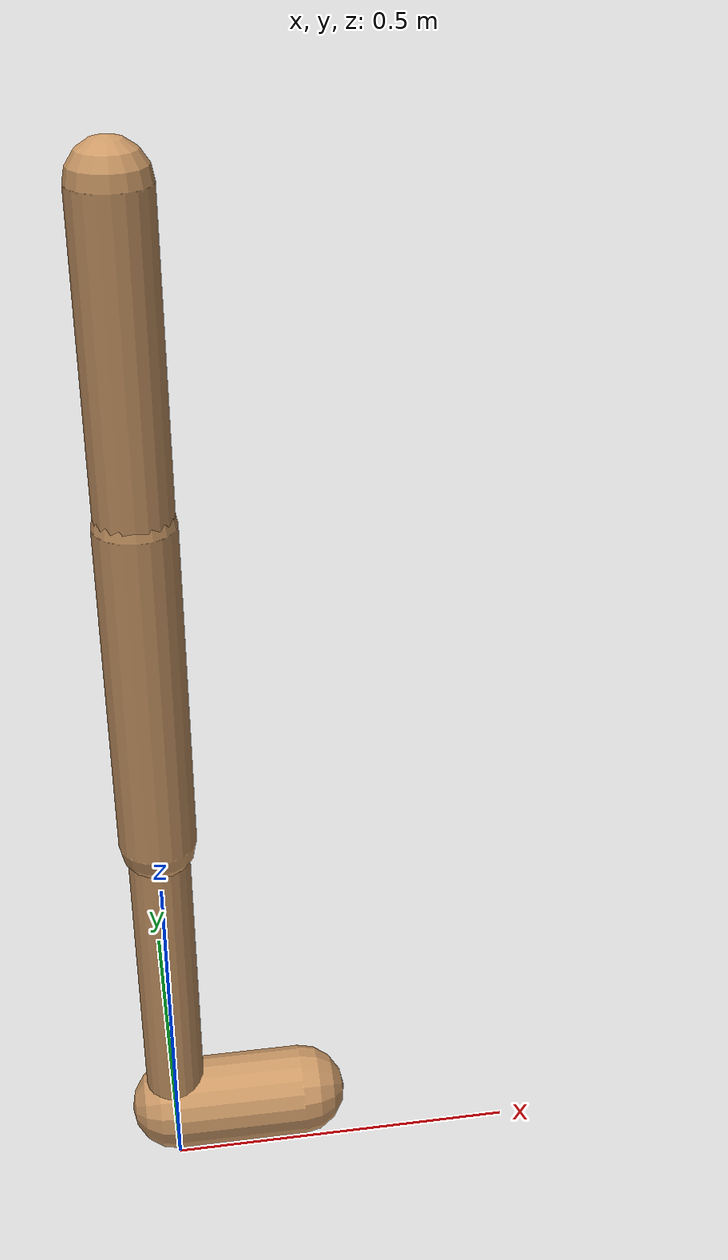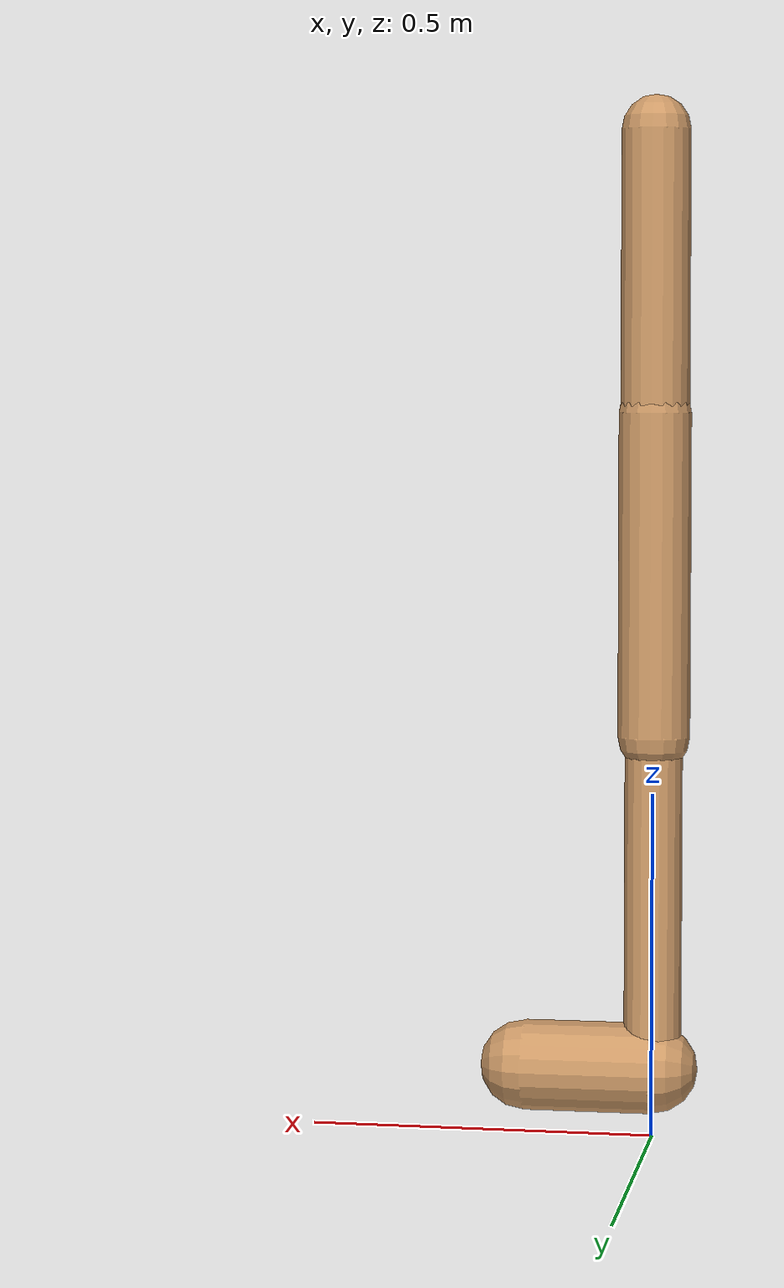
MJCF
<mujoco model="walker2d">
  <compiler angle="degree" coordinate="global" inertiafromgeom="true" />
  <default>
    <joint armature="0.01" damping=".1" limited="true" />
    <geom conaffinity="0" condim="3" contype="1" density="1000" friction="0.8 .1 .1" rgba="0.8 0.6 .4 1" />
  </default>
  <option integrator="RK4" timestep="0.002" />
  <worldbody>

    <body name="torso" pos="0 0 0.03266711282039516">
      <joint armature="0" axis="1 0 0" damping="0" limited="false" name="ignorex" pos="0 0 0" stiffness="0" type="slide" />
      <joint armature="0" axis="0 0 1" damping="0" limited="false" name="ignorez" pos="0 0 0" ref="1.25" stiffness="0" type="slide" />
      <joint armature="0" axis="0 1 0" damping="0" limited="false" name="ignorey" pos="0 0 0" stiffness="0" type="hinge" />
      <geom fromto="0 0 1.45 0 0 1.05" name="torso_geom" size="0.04958586187539136" type="capsule" />
      <body name="thigh">
        <joint axis="0 -1 0" name="thigh_joint" pos="0 0 1.05" range="-150 0" type="hinge" />
        <geom fromto="0.0 0.0 1.05 0.0 0.0 0.584526104453497" name="thigh_geom" size="0.052169970045964034" type="capsule" />
        <body name="leg" pos="0.0 0.0 -0.015473895546503025">
          <joint axis="0 -1 0" name="leg_joint" pos="0 0 0.6" range="-150 0" type="hinge" />
          <geom fromto="0.0 0.0 0.6 0.0 0.0 0.08280678272610782" name="leg_geom" size="0.041735976036771226" type="capsule" />
          <body name="foot" pos="0.0 0.0 -0.017193217273892183">
            <joint axis="0 -1 0" name="foot_joint" pos="0 0 0.1" range="-45 45" type="hinge" />
            <geom fromto="0.0 0.0 0.1 0.18586072899906458 0.0 0.1" name="foot_geom" size="0.06571128174622362" type="capsule" />
          </body>
        </body>
      </body>

      <body name="thigh_left">
        <joint axis="0 -1 0" name="thigh_left_joint" pos="0 0 1.05" range="-150 0" type="hinge" />
        <geom fromto="0.0 0.0 1.05 0.0 0.0 0.584526104453497" name="thigh_left_geom" rgba=".7 .3 .6 1" size="0.052169970045964034" type="capsule" />
        <body name="leg_left" pos="0.0 0.0 -0.015473895546503025">
          <joint axis="0 -1 0" name="leg_left_joint" pos="0 0 0.6" range="-150 0" type="hinge" />
          <geom fromto="0.0 0.0 0.6 0.0 0.0 0.08280678272610782" name="leg_left_geom" rgba=".7 .3 .6 1" size="0.041735976036771226" type="capsule" />
          <body name="foot_left" pos="0.0 0.0 -0.017193217273892183">
            <joint axis="0 -1 0" name="foot_left_joint" pos="0 0 0.1" range="-45 45" type="hinge" />
            <geom fromto="0.0 0.0 0.1 0.18586072899906458 0.0 0.1" name="foot_left_geom" rgba=".7 .3 .6 1" size="0.06571128174622362" type="capsule" />
          </body>
        </body>
      </body>
    </body>
  </worldbody>
  <actuator>

    <motor ctrllimited="true" ctrlrange="-1.0 1.0" gear="100" joint="thigh_joint" />
    <motor ctrllimited="true" ctrlrange="-1.0 1.0" gear="100" joint="leg_joint" />
    <motor ctrllimited="true" ctrlrange="-1.0 1.0" gear="100" joint="foot_joint" />
    <motor ctrllimited="true" ctrlrange="-1.0 1.0" gear="100" joint="thigh_left_joint" />
    <motor ctrllimited="true" ctrlrange="-1.0 1.0" gear="100" joint="leg_left_joint" />
    <motor ctrllimited="true" ctrlrange="-1.0 1.0" gear="100" joint="foot_left_joint" />

  </actuator>
</mujoco>
